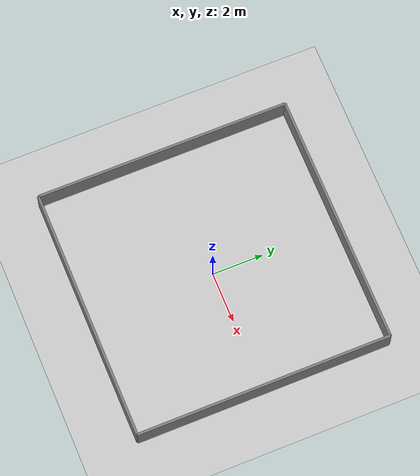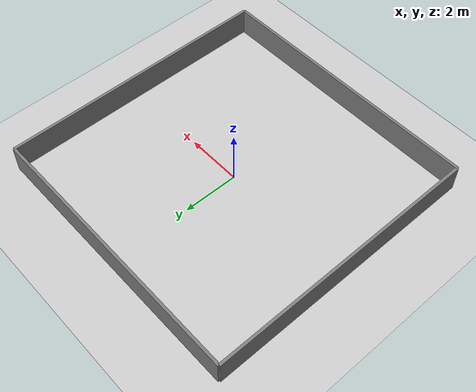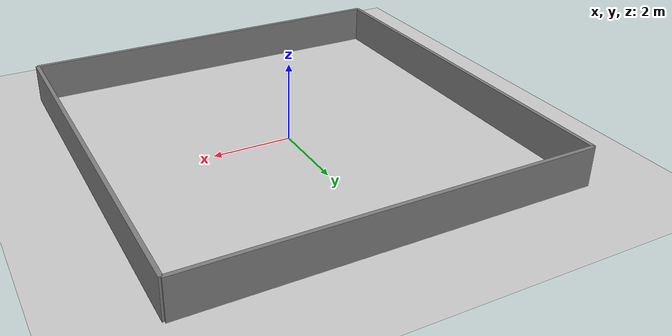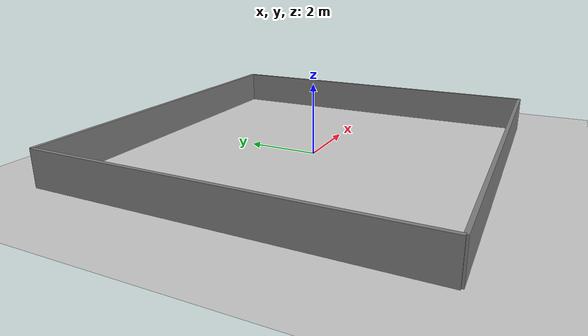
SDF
<?xml version="1.0" ?>
<sdf version="1.8">
    <world name="my_world">
        <physics name="1ms" type="ignored">
            <max_step_size>0.001</max_step_size>
            <real_time_factor>1.0</real_time_factor>
        </physics>
        <plugin
            filename="gz-sim-physics-system"
            name="gz::sim::systems::Physics">
        </plugin>
        <plugin
            filename="gz-sim-user-commands-system"
            name="gz::sim::systems::UserCommands">
        </plugin>
        <plugin
            filename="gz-sim-scene-broadcaster-system"
            name="gz::sim::systems::SceneBroadcaster">
        </plugin>
        <plugin
            filename="gz-sim-sensors-system"
            name="gz::sim::systems::Sensors">
        </plugin>

        <light type="directional" name="sun">
            <cast_shadows>true</cast_shadows>
            <pose>0 0 10 0 0 0</pose>
            <diffuse>0.8 0.8 0.8 1</diffuse>
            <specular>0.2 0.2 0.2 1</specular>
            <attenuation>
                <range>1000</range>
                <constant>0.9</constant>
                <linear>0.01</linear>
                <quadratic>0.001</quadratic>
            </attenuation>
            <direction>-0.5 0.1 -0.9</direction>
        </light>

        <model name="ground_plane">
            <static>true</static>
            <link name="link">
                <collision name="collision">
                <geometry>
                    <plane>
                    <normal>0 0 1</normal>
                    <size>100 100</size>
                    </plane>
                </geometry>
                </collision>
                <visual name="visual">
                <geometry>
                    <plane>
                    <normal>0 0 1</normal>
                    <size>100 100</size>
                    </plane>
                </geometry>
                <material>
                    <ambient>0.8 0.8 0.8 1</ambient>
                    <diffuse>0.8 0.8 0.8 1</diffuse>
                    <specular>0.8 0.8 0.8 1</specular>
                </material>
                </visual>
            </link>
        </model>
        <!-- Walls around the origin: left, right, front (top), back (bottom) -->
        <model name="wall_left">
            <static>true</static>
            <link name="link">
                <pose>-5 0 0.5 0 0 0</pose>
                <collision name="collision">
                    <geometry>
                        <box>
                            <size>0.1 10 1.0</size>
                        </box>
                    </geometry>
                </collision>
                <visual name="visual">
                    <geometry>
                        <box>
                            <size>0.1 10 1.0</size>
                        </box>
                    </geometry>
                    <material>
                        <ambient>0.5 0.5 0.5 1</ambient>
                        <diffuse>0.5 0.5 0.5 1</diffuse>
                    </material>
                </visual>
            </link>
        </model>

        <model name="wall_right">
            <static>true</static>
            <link name="link">
                <pose>5 0 0.5 0 0 0</pose>
                <collision name="collision">
                    <geometry>
                        <box>
                            <size>0.1 10 1.0</size>
                        </box>
                    </geometry>
                </collision>
                <visual name="visual">
                    <geometry>
                        <box>
                            <size>0.1 10 1.0</size>
                        </box>
                    </geometry>
                    <material>
                        <ambient>0.5 0.5 0.5 1</ambient>
                        <diffuse>0.5 0.5 0.5 1</diffuse>
                    </material>
                </visual>
            </link>
        </model>

        <model name="wall_front">
            <static>true</static>
            <link name="link">
                <pose>0 5 0.5 0 0 0</pose>
                <collision name="collision">
                    <geometry>
                        <box>
                            <size>10 0.1 1.0</size>
                        </box>
                    </geometry>
                </collision>
                <visual name="visual">
                    <geometry>
                        <box>
                            <size>10 0.1 1.0</size>
                        </box>
                    </geometry>
                    <material>
                        <ambient>0.5 0.5 0.5 1</ambient>
                        <diffuse>0.5 0.5 0.5 1</diffuse>
                    </material>
                </visual>
            </link>
        </model>

        <model name="wall_back">
            <static>true</static>
            <link name="link">
                <pose>0 -5 0.5 0 0 0</pose>
                <collision name="collision">
                    <geometry>
                        <box>
                            <size>10 0.1 1.0</size>
                        </box>
                    </geometry>
                </collision>
                <visual name="visual">
                    <geometry>
                        <box>
                            <size>10 0.1 1.0</size>
                        </box>
                    </geometry>
                    <material>
                        <ambient>0.5 0.5 0.5 1</ambient>
                        <diffuse>0.5 0.5 0.5 1</diffuse>
                    </material>
                </visual>
            </link>
        </model>
    </world>
</sdf>
